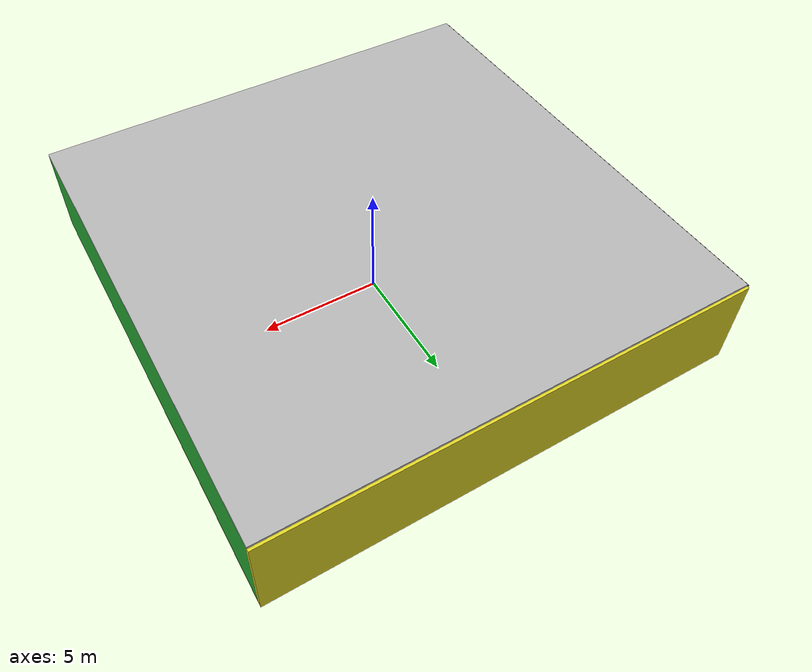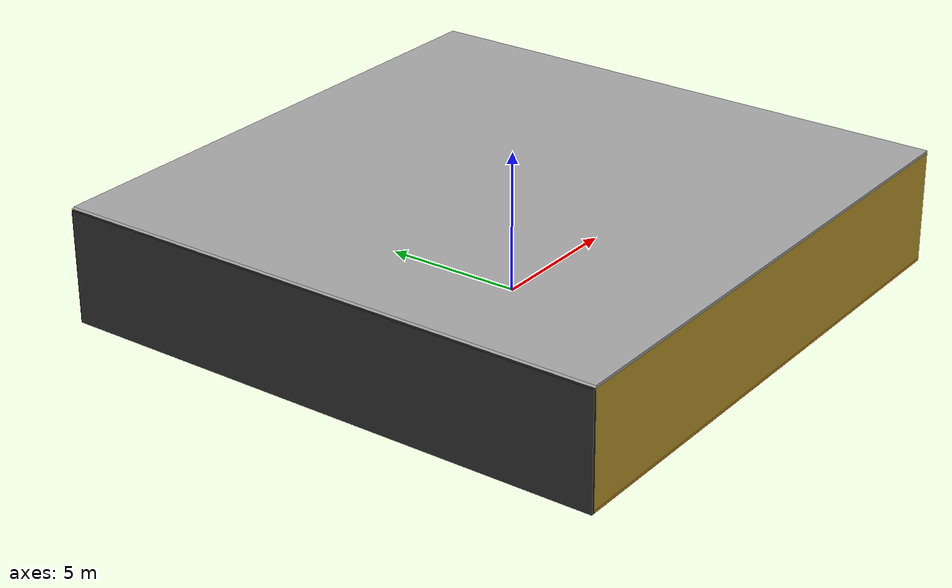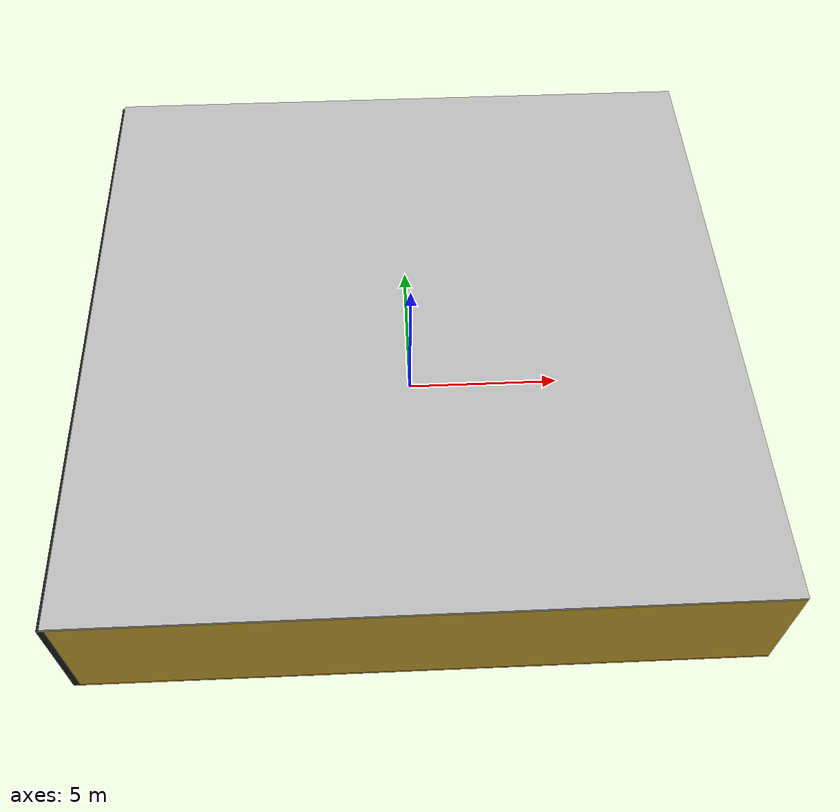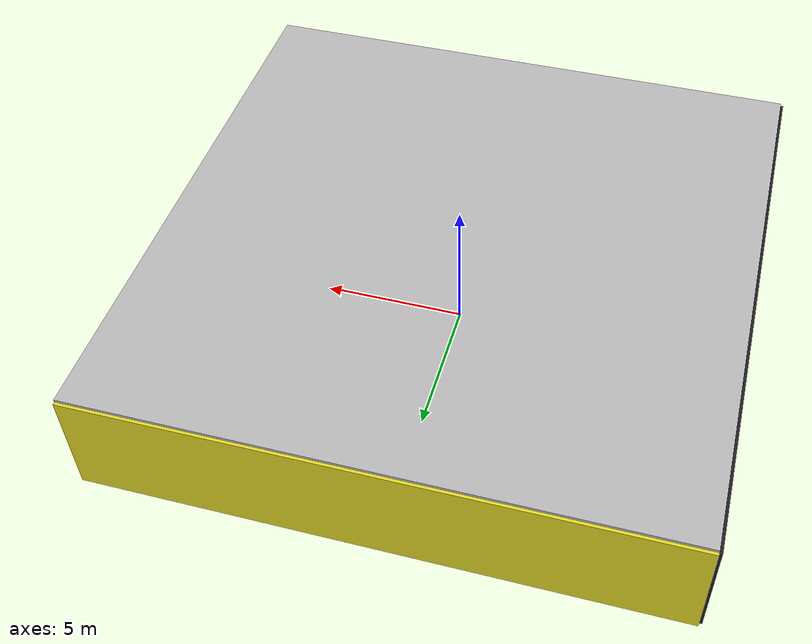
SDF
<sdf version="1.4">
 <world name="default">
  <physics type="ode">
   <max_step_size>0.001</max_step_size>
   <real_time_factor>1</real_time_factor>
   <real_time_update_rate>1000</real_time_update_rate>
   <gravity>0 0 -9.8</gravity>
  </physics>
  <scene><ambient>0.4 0.4 0.4 1</ambient><background>0.7 0.7 0.7 1</background><shadows>1</shadows></scene>
  <model name="Surrounding">
   <static>1</static>
   <link name="Ceiling">
    <collision name="Ceiling_Collision"><geometry><box><size>20 20 0.1</size></box></geometry></collision>
    <visual name="Ceiling_Visual">
     <geometry><box><size>20 20 0.1</size></box></geometry>
     <material>
      <script><uri>file://media/materials/scripts/gazebo.material</uri><name>Gazebo/CloudySky</name></script>
     </material>
    </visual>
    <pose>0 0 4.05 0 0 0</pose>
   </link>
   <link name="Wall_South">
    <collision name="Wall_South_Collision">
     <geometry><box><size>20 0 4</size></box></geometry>
     <pose>0 0 2 0 -0 0</pose>
    </collision>
    <visual name="Wall_South_Visual">
     <pose>0 0 2 0 -0 0</pose>
     <geometry><box><size>20 0 4</size></box></geometry>
     <material>
      <script><uri>file://media/materials/scripts/gazebo.material</uri><name>Gazebo/Gold</name></script>
     </material>
    </visual>
    <velocity_decay><linear>0</linear><angular>0</angular></velocity_decay>
    <pose>0 -10 0 0 -0 0</pose>
   </link>
   <link name="Wall_East">
    <collision name="Wall_21_Collision">
     <geometry><box><size>20 0 4</size></box></geometry>
     <pose>0 0 2 0 -0 0</pose>
    </collision>
    <visual name="Wall_21_Visual">
     <pose>0 0 2 0 -0 0</pose>
     <geometry><box><size>20 0 4</size></box></geometry>
     <material>
      <script><uri>file://media/materials/scripts/gazebo.material</uri><name>Gazebo/GreenGlow</name></script>
     </material>
    </visual>
    <velocity_decay><linear>0</linear><angular>0</angular></velocity_decay>
    <pose>10 0 0 0 -0 1.5708</pose>
   </link>
   <link name="Wall_North">
    <collision name="Wall_22_Collision">
     <geometry><box><size>20 0.2 4</size></box></geometry>
     <pose>0 0 2 0 -0 0</pose>
    </collision>
    <visual name="Wall_22_Visual">
     <pose>0 0 2 0 -0 0</pose>
     <geometry><box><size>20 0.2 4</size></box></geometry>
     <material>
      <script><uri>file://media/materials/scripts/gazebo.material</uri><name>Gazebo/Yellow</name></script>
     </material>
    </visual>
    <velocity_decay><linear>0</linear><angular>0</angular></velocity_decay>
    <pose>0 10 0 0 -0 0</pose>
   </link>
   <link name="Wall_West">
    <collision name="Wall_23_Collision">
     <geometry><box><size>20 0.2 4</size></box></geometry>
     <pose>0 0 2 0 -0 0</pose>
    </collision>
    <visual name="Wall_23_Visual">
     <pose>0 0 2 0 -0 0</pose>
     <geometry><box><size>20 0.2 4</size></box></geometry>
     <material>
      <script><uri>file://media/materials/scripts/gazebo.material</uri><name>Gazebo/FlatBlack</name></script>
     </material>
    </visual>
    <velocity_decay><linear>0</linear><angular>0</angular></velocity_decay>
    <pose>-10 0 0 0 0 -1.5708</pose>
   </link>
   <link name="Ground_link">
    <collision name="collision">
     <pose>0 0 .05 0 -0 0</pose>
     <geometry><box><size>20 20 0.1</size></box></geometry>
    </collision>
    <visual name="visual">
     <pose>0 0 .05 0 -0 0</pose>
     <geometry><box><size>20 20 0.1</size></box></geometry>
     <material>
      <script>
       <uri>file://media/materials/scripts/gazebo.material</uri>
       <name>Gazebo/OrangeTransparent</name>
      </script>
     </material>
    </visual>
   </link>
   <static>1</static>
  </model>
  <spherical_coordinates>
   <surface_model>EARTH_WGS84</surface_model>
   <latitude_deg>0</latitude_deg>
   <longitude_deg>0</longitude_deg>
   <elevation>0</elevation>
   <heading_deg>0</heading_deg>
  </spherical_coordinates>
  <light name="lightball_0" type="diffuse">
   <diffuse>0.8 0.8 0.8 1</diffuse>
   <specular>0.2 0.2 0.2 1</specular>
   <attenuation>
    <range>100</range>
    <constant>0.7</constant>
    <linear>0.01</linear>
    <quadratic>0.001</quadratic>
   </attenuation>
   <direction>-0.5 0.1 -0.9</direction>
   <pose>9.25912116363 7.0844848032 1.91572183871 0 0 0</pose>
  </light>
  <light name="lightball_1" type="diffuse">
   <diffuse>0.8 0.8 0.8 1</diffuse>
   <specular>0.2 0.2 0.2 1</specular>
   <attenuation>
    <range>100</range>
    <constant>0.7</constant>
    <linear>0.01</linear>
    <quadratic>0.001</quadratic>
   </attenuation>
   <direction>-0.5 0.1 -0.9</direction>
   <pose>1.98945186108 -4.64844582029 2.92555762149 0 0 0</pose>
  </light>
  <light name="lightball_2" type="diffuse">
   <diffuse>0.8 0.8 0.8 1</diffuse>
   <specular>0.2 0.2 0.2 1</specular>
   <attenuation>
    <range>100</range>
    <constant>0.7</constant>
    <linear>0.01</linear>
    <quadratic>0.001</quadratic>
   </attenuation>
   <direction>-0.5 0.1 -0.9</direction>
   <pose>6.73982096543 9.75822709162 2.84777084861 0 0 0</pose>
  </light>
  <light name="lightball_3" type="diffuse">
   <diffuse>0.8 0.8 0.8 1</diffuse>
   <specular>0.2 0.2 0.2 1</specular>
   <attenuation>
    <range>100</range>
    <constant>0.7</constant>
    <linear>0.01</linear>
    <quadratic>0.001</quadratic>
   </attenuation>
   <direction>-0.5 0.1 -0.9</direction>
   <pose>0.520833531464 7.41343905142 2.2080889017 0 0 0</pose>
  </light>
  <light name="lightball_4" type="diffuse">
   <diffuse>0.8 0.8 0.8 1</diffuse>
   <specular>0.2 0.2 0.2 1</specular>
   <attenuation>
    <range>100</range>
    <constant>0.7</constant>
    <linear>0.01</linear>
    <quadratic>0.001</quadratic>
   </attenuation>
   <direction>-0.5 0.1 -0.9</direction>
   <pose>6.53272311358 6.71563672057 1.11498870331 0 0 0</pose>
  </light>
  <light name="lightball_5" type="diffuse">
   <diffuse>0.8 0.8 0.8 1</diffuse>
   <specular>0.2 0.2 0.2 1</specular>
   <attenuation>
    <range>100</range>
    <constant>0.7</constant>
    <linear>0.01</linear>
    <quadratic>0.001</quadratic>
   </attenuation>
   <direction>-0.5 0.1 -0.9</direction>
   <pose>-9.14121478072 -4.24730441198 3.88661847616 0 0 0</pose>
  </light>
  <light name="lightball_6" type="diffuse">
   <diffuse>0.8 0.8 0.8 1</diffuse>
   <specular>0.2 0.2 0.2 1</specular>
   <attenuation>
    <range>100</range>
    <constant>0.7</constant>
    <linear>0.01</linear>
    <quadratic>0.001</quadratic>
   </attenuation>
   <direction>-0.5 0.1 -0.9</direction>
   <pose>3.9436876762 -0.587744775722 3.08794869538 0 0 0</pose>
  </light>
  <light name="lightball_7" type="diffuse">
   <diffuse>0.8 0.8 0.8 1</diffuse>
   <specular>0.2 0.2 0.2 1</specular>
   <attenuation>
    <range>100</range>
    <constant>0.7</constant>
    <linear>0.01</linear>
    <quadratic>0.001</quadratic>
   </attenuation>
   <direction>-0.5 0.1 -0.9</direction>
   <pose>-2.19112983705 -3.19842846411 2.37612008267 0 0 0</pose>
  </light>
  <include>
   <uri>model://robocup_3Dsim_goal</uri>
   <pose>-7.60889771745 3.8687147981 0 0 0 2.84429575847</pose>
  </include>
  <include>
   <uri>model://textured_shapes</uri>
   <pose>-3.81829663102 -1.54269962175 0 0 0 1.45353525592</pose>
  </include>
  <include><uri>model://cabinet</uri><pose>-4.56321020771 5.03261028693 0 0 0 0.75694391484</pose></include>
  <include><uri>model://cabinet</uri><pose>-1.02728933559 4.35474417449 0 0 0 0.591092886973</pose></include>
  <include><uri>model://cabinet</uri><pose>0.910939656109 -7.17519439344 0 0 0 0.239007476919</pose></include>
  <include>
   <uri>model://construction_cone</uri>
   <pose>2.25053140208 -4.79399798825 0 0 0 2.86286864193</pose>
  </include>
  <include><uri>model://cabinet</uri><pose>1.11511956048 4.38980774597 0 0 0 1.42776158812</pose></include>
  <include><uri>model://cabinet</uri><pose>4.24692528683 3.82942657716 0 0 0 2.88715869188</pose></include>
  <include>
   <uri>model://construction_cone</uri>
   <pose>7.3958760712 -4.88391035149 0 0 0 0.168697068445</pose>
  </include>
  <include>
   <uri>model://robocup_3Dsim_goal</uri>
   <pose>7.26171348841 0.960263542349 0 0 0 1.6999550596</pose>
  </include>
  <include>
   <uri>model://robocup_3Dsim_goal</uri>
   <pose>7.40464255738 4.33085011525 0 0 0 0.179009336526</pose>
  </include>
  <include>
   <uri>model://construction_cone</uri>
   <pose>8.24376989218 7.72868649776 0 0 0 1.25605323672</pose>
  </include>
 </world>
</sdf>

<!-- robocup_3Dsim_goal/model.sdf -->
<sdf version="1.5">
  <model name="robocup_3d_goal">
    <static>true</static>
    <link name="left_post">
      <pose>0 1.05 0.45 0 0 0</pose>
      <collision name="collision">
        <geometry>
          <cylinder>
            <radius>0.05</radius>
            <length>0.9</length>
          </cylinder>
        </geometry>
      </collision>
      <visual name="visual">
        <geometry>
          <cylinder>
            <radius>0.05</radius>
            <length>0.9</length>
          </cylinder>
        </geometry>
        <material>
          <script>
            <uri>file://media/materials/scripts/gazebo.material</uri>
            <name>Gazebo/ZincYellow</name>
          </script>
        </material>
      </visual>
    </link>
    <link name="left_support_horiz_lower">
      <pose>0.30 1.05 0.01 0 0 0</pose>
      <collision name="collision">
        <geometry>
          <box>
            <size>0.50 0.02 0.02</size>
          </box>
        </geometry>
      </collision>
      <visual name="visual">
        <geometry>
          <box>
            <size>0.50 0.02 0.02</size>
          </box>
        </geometry>
        <material>
          <script>
            <uri>file://media/materials/scripts/gazebo.material</uri>
            <name>Gazebo/White</name>
          </script>
        </material>
      </visual>
    </link>
    <link name="left_support_horiz_upper">
      <pose>0.30 1.05 0.79 0 0 0</pose>
      <collision name="collision">
        <geometry>
          <box>
            <size>0.50 0.02 0.02</size>
          </box>
        </geometry>
      </collision>
      <visual name="visual">
        <geometry>
          <box>
            <size>0.50 0.02 0.02</size>
          </box>
        </geometry>
        <material>
          <script>
            <uri>file://media/materials/scripts/gazebo.material</uri>
            <name>Gazebo/White</name>
          </script>
        </material>
      </visual>
    </link>
    <link name="left_support_vertical">
      <pose>0.56 1.05 0.4 0 1.5708 0</pose>
      <collision name="collision">
        <geometry>
          <box>
            <size>0.80 0.02 0.02</size>
          </box>
        </geometry>
      </collision>
      <visual name="visual">
        <geometry>
          <box>
            <size>0.80 0.02 0.02</size>
          </box>
        </geometry>
        <material>
          <script>
            <uri>file://media/materials/scripts/gazebo.material</uri>
            <name>Gazebo/White</name>
          </script>
        </material>
      </visual>
    </link>
    <link name="right_support_horiz_lower">
      <pose>0.30 -1.05 0.01 0 0 0</pose>
      <collision name="collision">
        <geometry>
          <box>
            <size>0.50 0.02 0.02</size>
          </box>
        </geometry>
      </collision>
      <visual name="visual">
        <geometry>
          <box>
            <size>0.50 0.02 0.02</size>
          </box>
        </geometry>
        <material>
          <script>
            <uri>file://media/materials/scripts/gazebo.material</uri>
            <name>Gazebo/White</name>
          </script>
        </material>
      </visual>
    </link>
    <link name="right_support_horiz_upper">
      <pose>0.30 -1.05 0.79 0 0 0</pose>
      <collision name="collision">
        <geometry>
          <box>
            <size>0.50 0.02 0.02</size>
          </box>
        </geometry>
      </collision>
      <visual name="visual">
        <geometry>
          <box>
            <size>0.50 0.02 0.02</size>
          </box>
        </geometry>
        <material>
          <script>
            <uri>file://media/materials/scripts/gazebo.material</uri>
            <name>Gazebo/White</name>
          </script>
        </material>
      </visual>
    </link>
    <link name="right_support_vertical">
      <pose>0.56 -1.05 0.4 0 1.5708 0</pose>
      <collision name="collision">
        <geometry>
          <box>
            <size>0.80 0.02 0.02</size>
          </box>
        </geometry>
      </collision>
      <visual name="visual">
        <geometry>
          <box>
            <size>0.80 0.02 0.02</size>
          </box>
        </geometry>
        <material>
          <script>
            <uri>file://media/materials/scripts/gazebo.material</uri>
            <name>Gazebo/White</name>
          </script>
        </material>
      </visual>
    </link>
    <link name="center_support_horiz_lower">
      <pose>0.56 0 0.01 0 1.5708 0</pose>
      <collision name="collision">
        <geometry>
          <box>
            <size>0.02 2.08 0.02</size>
          </box>
        </geometry>
      </collision>
      <visual name="visual">
        <geometry>
          <box>
            <size>0.02 2.08 0.02</size>
          </box>
        </geometry>
        <material>
          <script>
            <uri>file://media/materials/scripts/gazebo.material</uri>
            <name>Gazebo/White</name>
          </script>
        </material>
      </visual>
    </link>
    <link name="center_support_horiz_upper">
      <pose>0.56 0 0.79 0 1.5708 0</pose>
      <collision name="collision">
        <geometry>
          <box>
            <size>0.02 2.08 0.02</size>
          </box>
        </geometry>
      </collision>
      <visual name="visual">
        <geometry>
          <box>
            <size>0.02 2.08 0.02</size>
          </box>
        </geometry>
        <material>
          <script>
            <uri>file://media/materials/scripts/gazebo.material</uri>
            <name>Gazebo/White</name>
          </script>
        </material>
      </visual>
    </link>
    <link name="right_post">
      <pose>0 -1.05 0.45 0 0 0</pose>
      <collision name="collision">
        <geometry>
          <cylinder>
            <radius>0.05</radius>
            <length>0.9</length>
          </cylinder>
        </geometry>
      </collision>
      <visual name="visual">
        <geometry>
          <cylinder>
            <radius>0.05</radius>
            <length>0.9</length>
          </cylinder>
        </geometry>
        <material>
          <script>
            <uri>file://media/materials/scripts/gazebo.material</uri>
            <name>Gazebo/ZincYellow</name>
          </script>
        </material>
      </visual>
    </link>
    <link name="crossbar">
      <pose>0 0 0.85 1.57 1.57 0</pose>
      <collision name="collision">
        <geometry>
          <cylinder>
            <radius>0.05</radius>
            <length>2.0</length>
          </cylinder>
        </geometry>
      </collision>
      <visual name="visual">
        <geometry>
          <cylinder>
            <radius>0.05</radius>
            <length>2.0</length>
          </cylinder>
        </geometry>
        <material>
          <script>
            <uri>file://media/materials/scripts/gazebo.material</uri>
            <name>Gazebo/ZincYellow</name>
          </script>
        </material>
      </visual>
    </link>
    <link name="center_net">
      <pose>0.56 0 0.40 0 0 0</pose>
      <collision name="collision">
        <geometry>
          <box>
            <size>0.01 2.1 0.80</size>
          </box>
        </geometry>
      </collision>
      <visual name="visual">
        <geometry>
          <box>
            <size>0.01 2.1 0.80</size>
          </box>
        </geometry>
        <material>
          <script>
            <uri>model://../model_source/models/robocup09_spl_field/materials/scripts/</uri>
            <uri>model://../model_source/models/robocup09_spl_field/materials/textures/</uri>
            <name>RoboCup/Net</name>
          </script>
        </material>
      </visual>
    </link>
    <link name="left_net">
      <pose>0.30 1.05 0.40 0 0 0</pose>
      <collision name="collision">
        <geometry>
          <box>
            <size>0.50 0.01 0.76</size>
          </box>
        </geometry>
      </collision>
      <visual name="visual">
        <geometry>
          <box>
            <size>0.50 0.01 0.76</size>
          </box>
        </geometry>
        <material>
          <script>
            <uri>model://../model_source/models/robocup09_spl_field/materials/scripts/</uri>
            <uri>model://../model_source/models/robocup09_spl_field/materials/textures/</uri>
            <name>RoboCup/Net</name>
          </script>
        </material>
      </visual>
    </link>
    <link name="right_net">
      <pose>0.30 -1.05 0.40 0 0 0</pose>
      <collision name="collision">
        <geometry>
          <box>
            <size>0.50 0.01 0.76</size>
          </box>
        </geometry>
      </collision>
      <visual name="visual">
        <geometry>
          <box>
            <size>0.50 0.01 0.76</size>
          </box>
        </geometry>
        <material>
          <script>
            <uri>model://../model_source/models/robocup09_spl_field/materials/scripts/</uri>
            <uri>model://../model_source/models/robocup09_spl_field/materials/textures/</uri>
            <name>RoboCup/Net</name>
          </script>
        </material>
      </visual>
    </link>
  </model>
</sdf>

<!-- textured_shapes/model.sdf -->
<sdf version="1.6">
  <model name="textured_shapes">
    <pose>0 0 0.5 0 0 0</pose>
    <link name="box">
      <pose>0 -1.5 0 0 0 0</pose>
      <collision name="collision">
        <geometry>
          <box>
            <size>1 1 1</size>
          </box>
        </geometry>
      </collision>
      <visual name="visual">
        <geometry>
          <box>
            <size>1 1 1</size>
          </box>
        </geometry>
        <material>
          <script>
            <uri>model://../model_source/models/textured_shapes/materials/scripts</uri>
            <uri>model://../model_source/models/textured_shapes/materials/textures</uri>
            <name>TexturedShape/Squares</name>
          </script>
        </material>
      </visual>
    </link>
    <link name="sphere">
      <collision name="collision">
        <geometry>
          <sphere>
            <radius>0.5</radius>
          </sphere>
        </geometry>
      </collision>
      <visual name="visual">
        <geometry>
          <sphere>
            <radius>0.5</radius>
          </sphere>
        </geometry>
        <material>
          <script>
            <uri>model://../model_source/models/textured_shapes/materials/scripts</uri>
            <uri>model://../model_source/models/textured_shapes/materials/textures</uri>
            <name>TexturedShape/Squares</name>
          </script>
        </material>
      </visual>
    </link>
    <link name="cylinder">
      <pose>0 1.5 0 0 0 0</pose>
      <collision name="collision">
        <geometry>
          <cylinder>
            <radius>0.5</radius>
            <length>1</length>
          </cylinder>
        </geometry>
      </collision>
      <visual name="visual">
        <geometry>
          <cylinder>
            <radius>0.5</radius>
            <length>1</length>
          </cylinder>
        </geometry>
        <material>
          <script>
            <uri>model://../model_source/models/textured_shapes/materials/scripts</uri>
            <uri>model://../model_source/models/textured_shapes/materials/textures</uri>
            <name>TexturedShape/Squares</name>
          </script>
        </material>
      </visual>
    </link>
  </model>
</sdf>

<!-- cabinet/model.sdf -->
<sdf version="1.5">
  <model name="cabinet">
    <static>true</static>
    <link name="cabinet_bottom_plate">
      <inertial>
        <pose>0 0 -1 0 0 0</pose>
        <inertia>
          <ixx>2.050000</ixx>
          <ixy>0</ixy>
          <ixz>0</ixz>
          <iyy>2.050000</iyy>
          <iyz>0</iyz>
          <izz>2.050000</izz>
        </inertia>
        <mass>25.000000</mass>
      </inertial>
      <collision name="cabinet_bottom_plate_geom">
        <pose>0 0 0.010000 0 0 0</pose>
        <geometry>
          <box>
            <size>0.450000 0.450000 0.020000</size>
          </box>
        </geometry>
      </collision>
      <visual name="cabinet_bottom_plate_geom_visual">
        <pose>0 0 0.010000 0 0 0</pose>
        <geometry>
          <box>
            <size>0.450000 0.450000 0.020000</size>
          </box>
        </geometry>
        <material>
          <script>
            <uri>model://media/materials/scripts/gazebo.material</uri>
            <name>Gazebo/Wood</name>
          </script>
        </material>
      </visual>
      <collision name="cabinet_bottom_plate_geom_cabinet_back_plate">
        <pose>0.235000 0 0.510000 0 0 0</pose>
        <geometry>
          <box>
            <size>0.020000 0.450000 1.020000</size>
          </box>
        </geometry>
      </collision>
      <visual name="cabinet_bottom_plate_geom_cabinet_back_plate_visual">
        <pose>0.235000 0 0.510000 0 0 0</pose>
        <geometry>
          <box>
            <size>0.020000 0.450000 1.020000</size>
          </box>
        </geometry>
        <material>
          <script>
            <uri>model://media/materials/scripts/gazebo.material</uri>
            <name>Gazebo/Wood</name>
          </script>
        </material>
      </visual>
      <collision name="cabinet_bottom_plate_geom_cabinet_left_plate">
        <pose>0 0.235000 0.510000 0 0 0</pose>
        <geometry>
          <box>
            <size>0.450000 0.020000 1.020000</size>
          </box>
        </geometry>
      </collision>
      <visual name="cabinet_bottom_plate_geom_cabinet_left_plate_visual">
        <pose>0 0.235000 0.510000 0 0 0</pose>
        <geometry>
          <box>
            <size>0.450000 0.020000 1.020000</size>
          </box>
        </geometry>
        <material>
          <script>
            <uri>model://media/materials/scripts/gazebo.material</uri>
            <name>Gazebo/Wood</name>
          </script>
        </material>
      </visual>
      <collision name="cabinet_bottom_plate_geom_cabinet_middle_plate">
        <pose>0 0 0.510000 0 0 0</pose>
        <geometry>
          <box>
            <size>0.450000 0.450000 0.020000</size>
          </box>
        </geometry>
      </collision>
      <visual name="cabinet_bottom_plate_geom_cabinet_middle_plate_visual">
        <pose>0 0 0.510000 0 0 0</pose>
        <geometry>
          <box>
            <size>0.450000 0.450000 0.020000</size>
          </box>
        </geometry>
        <material>
          <script>
            <uri>model://media/materials/scripts/gazebo.material</uri>
            <name>Gazebo/Wood</name>
          </script>
        </material>
      </visual>
      <collision name="cabinet_bottom_plate_geom_cabinet_right_plate">
        <pose>0 -0.235000 0.510000 0 0 0</pose>
        <geometry>
          <box>
            <size>0.450000 0.020000 1.020000</size>
          </box>
        </geometry>
      </collision>
      <visual name="cabinet_bottom_plate_geom_cabinet_right_plate_visual">
        <pose>0 -0.235000 0.510000 0 0 0</pose>
        <geometry>
          <box>
            <size>0.450000 0.020000 1.020000</size>
          </box>
        </geometry>
        <material>
          <script>
            <uri>model://media/materials/scripts/gazebo.material</uri>
            <name>Gazebo/Wood</name>
          </script>
        </material>
      </visual>
      <collision name="cabinet_bottom_plate_geom_cabinet_top_plate">
        <pose>0 0 1.010000 0 0 0</pose>
        <geometry>
          <box>
            <size>0.450000 0.450000 0.020000</size>
          </box>
        </geometry>
      </collision>
      <visual name="cabinet_bottom_plate_geom_cabinet_top_plate_visual">
        <pose>0 0 1.010000 0 0 0</pose>
        <geometry>
          <box>
            <size>0.450000 0.450000 0.020000</size>
          </box>
        </geometry>
        <material>
          <script>
            <uri>model://media/materials/scripts/gazebo.material</uri>
            <name>Gazebo/Wood</name>
          </script>
        </material>
      </visual>
    </link>
  </model>
</sdf>

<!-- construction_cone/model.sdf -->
<sdf version="1.5">
  <model name="Construction Cone">
    <link name="link">
      <collision name="collision">
        <geometry>
          <mesh>
            <scale>10 10 10</scale>
            <uri>file://isr-testbed/construction_cone/meshes/construction_cone.dae</uri>
          </mesh>
        </geometry>
      </collision>
      <visual name="visual">
        <geometry>
          <mesh>
            <scale>10 10 10</scale>
            <uri>file://isr-testbed/construction_cone/meshes/construction_cone.dae</uri>
          </mesh>
        </geometry>
      </visual>
    </link>
  </model>
</sdf>
